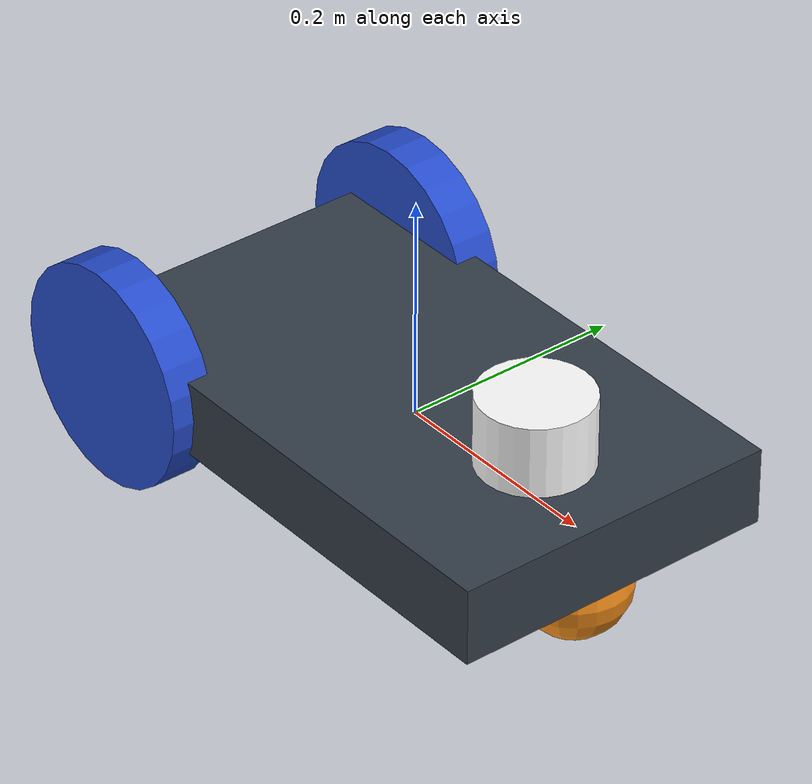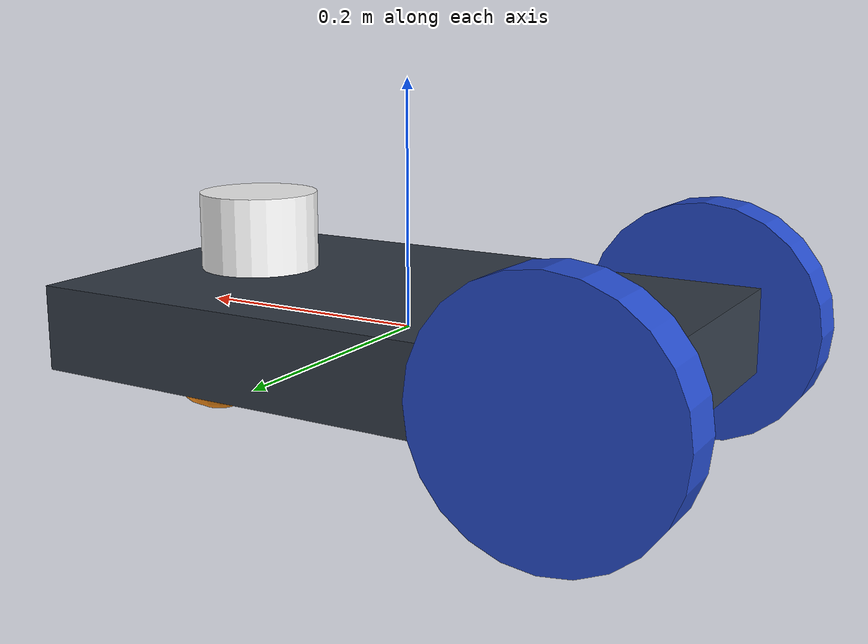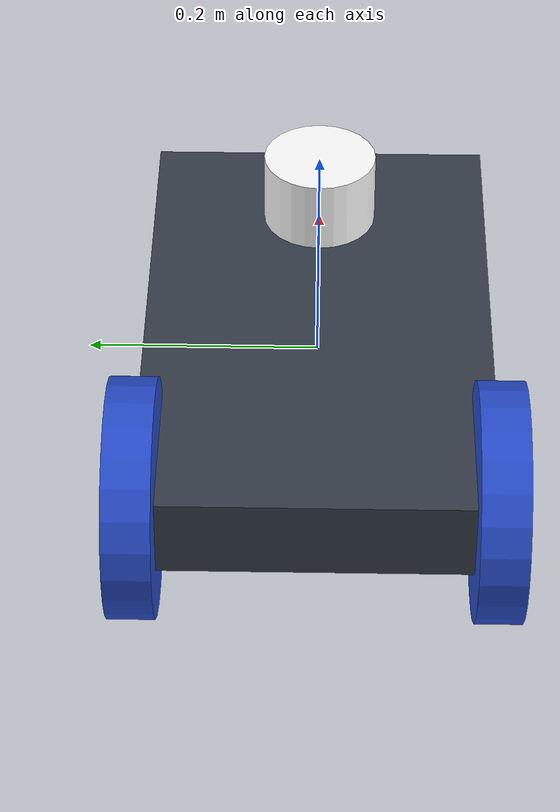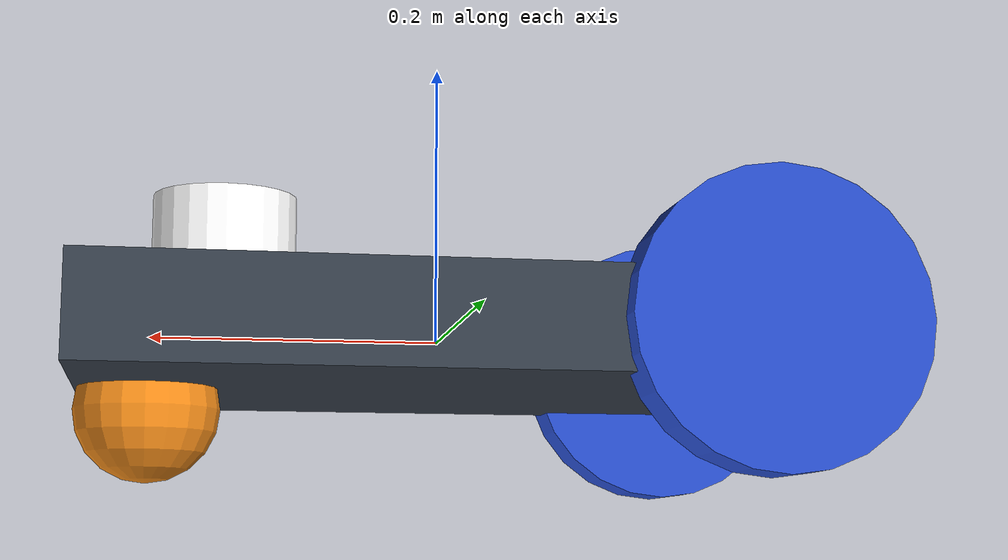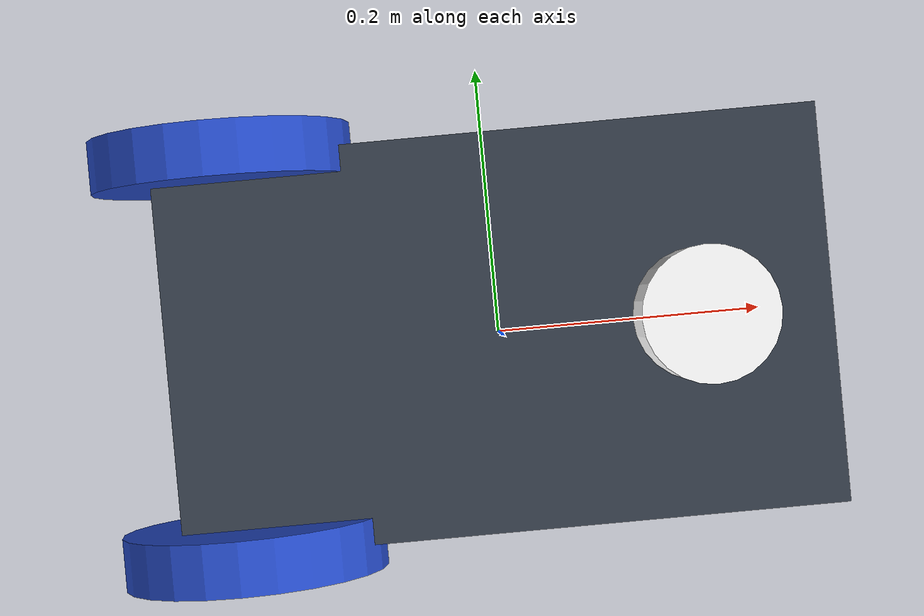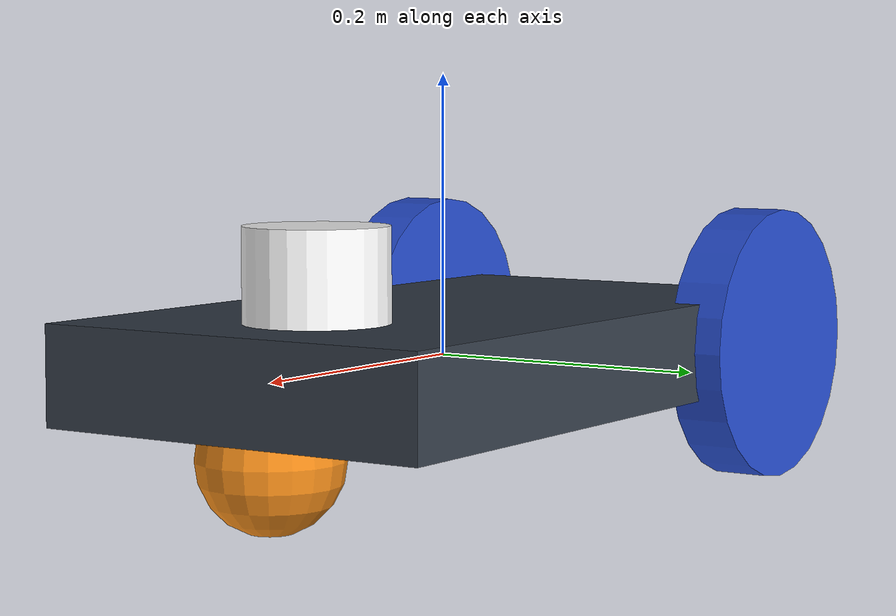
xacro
<?xml version="1.0" ?>

<robot name="m2wr" xmlns:xacro="https://www.ros.org/wiki/xacro" >

  <material name="black">
    <color rgba="0.0 0.0 0.0 1.0"/>
  </material>
  <material name="blue">
    <color rgba="0.203125 0.23828125 0.28515625 1.0"/>
  </material>
  <material name="green">
    <color rgba="0.0 0.8 0.0 1.0"/>
  </material>
  <material name="grey">
    <color rgba="0.2 0.2 0.2 1.0"/>
  </material>
  <material name="orange">
    <color rgba="1.0 0.423529411765 0.0392156862745 1.0"/>
  </material>
  <material name="brown">
    <color rgba="0.870588235294 0.811764705882 0.764705882353 1.0"/>
  </material>
  <material name="red">
    <color rgba="0.80078125 0.12890625 0.1328125 1.0"/>
  </material>
  <material name="white">
    <color rgba="1.0 1.0 1.0 1.0"/>
  </material>

  <gazebo reference="link_chassis">
    <material>Gazebo/Orange</material>
  </gazebo>
  <gazebo reference="link_left_wheel">
    <material>Gazebo/Blue</material>
  </gazebo>
  <gazebo reference="link_right_wheel">
    <material>Gazebo/Blue</material>
  </gazebo>

  <link name="link_chassis">
    <!-- pose and inertial -->
    <pose>0 0 0.1 0 0 0</pose>

    <inertial>
      <mass value="5"/>
      <origin rpy="0 0 0" xyz="0 0 0.1"/>
      <inertia ixx="0.0395416666667" ixy="0" ixz="0" iyy="0.106208333333" iyz="0" izz="0.106208333333"/>
    </inertial>

    <collision name="collision_chassis">
      <geometry>
        <box size="0.5 0.3 0.07"/>
      </geometry>
    </collision>

    <visual>
      <origin rpy="0 0 0" xyz="0 0 0"/>
      <geometry>
        <box size="0.5 0.3 0.07"/>
      </geometry>
      <material name="blue"/>
    </visual>

    <!-- caster front -->

    <collision name="caster_front_collision">
      <origin rpy=" 0 0 0" xyz="0.35 0 -0.05"/>
      <geometry>
        <sphere radius="0.05"/>
      </geometry>
      <surface>
        <friction>
          <ode>
            <mu>0</mu>
            <mu2>0</mu2>
            <slip1>1.0</slip1>
            <slip2>1.0</slip2>
          </ode>
        </friction>
      </surface>
    </collision>
    <visual name="caster_front_visual">
      <origin rpy=" 0 0 0" xyz="0.2 0 -0.05"/>
      <geometry>
        <sphere radius="0.05"/>
      </geometry>
    </visual>
    </link>

  <!-- Create wheel right -->

  <link name="link_right_wheel">
    <inertial>
      <mass value="0.2"/>
      <origin rpy="0 1.5707 1.5707" xyz="0 0 0"/>
      <inertia ixx="0.00052666666" ixy="0" ixz="0" iyy="0.00052666666" iyz="0" izz="0.001"/>
    </inertial>

    <collision name="link_right_wheel_collision">
      <origin rpy="0 1.5707 1.5707" xyz="0 0 0" />
      <geometry>
        <cylinder length="0.04" radius="0.1"/>
      </geometry>
    </collision>

    <visual name="link_right_wheel_visual">
      <origin rpy="0 1.5707 1.5707" xyz="0 0 0"/>
      <geometry>
        <cylinder length="0.04" radius="0.1"/>
      </geometry>
    </visual>

  </link>

  <!--   Joint for right wheel  -->
  <joint name="joint_right_wheel" type="continuous">
    <origin rpy="0 0 0" xyz="-0.2 0.15 0"/>
    <child link="link_right_wheel" />
    <parent link="link_chassis"/>
    <axis rpy="0 0 0" xyz="0 1 0"/>
    <limit effort="10000" velocity="1000"/>
    <joint_properties damping="1.0" friction="1.0" />
  </joint>

  <!-- Left Wheel link -->

  <link name="link_left_wheel">
    <inertial>
      <mass value="0.2"/>
      <origin rpy="0 1.5707 1.5707" xyz="0 0 0"/>
      <inertia ixx="0.00052666666" ixy="0" ixz="0" iyy="0.00052666666" iyz="0" izz="0.001"/>
    </inertial>

    <collision name="link_left_wheel_collision">
      <origin rpy="0 1.5707 1.5707" xyz="0 0 0" />
      <geometry>
        <cylinder length="0.04" radius="0.1"/>
      </geometry>
    </collision>

    <visual name="link_left_wheel_visual">
      <origin rpy="0 1.5707 1.5707" xyz="0 0 0"/>
      <geometry>
        <cylinder length="0.04" radius="0.1"/>
      </geometry>
    </visual>

  </link>

  <!--   Joint for right wheel  -->
  <joint name="joint_left_wheel" type="continuous">
    <origin rpy="0 0 0" xyz="-0.2 -0.15 0"/>
    <child link="link_left_wheel" />
    <parent link="link_chassis"/>
    <axis rpy="0 0 0" xyz="0 1 0"/>
    <limit effort="10000" velocity="1000"/>
    <joint_properties damping="1.0" friction="1.0" />
  </joint>
   <link name="sensor_laser">
    <inertial>
      <origin xyz="0 0 0" rpy="0 0 0" />
      <mass value="1" />
      <!-- RANDOM INERTIA BELOW -->
      <inertia ixx="0.02" ixy="0" ixz="0" iyy="0.02" iyz="0" izz="0.02"/>
    </inertial>

    <visual>
      <origin xyz="0 0 0" rpy="0 0 0" />
      <geometry>
        <cylinder radius="0.05" length="0.1"/>
      </geometry>
      <material name="white" />
    </visual>

    <collision>
      <origin xyz="0 0 0" rpy="0 0 0"/>
      <geometry>
        <cylinder radius="0.05" length="0.1"/>
      </geometry>
    </collision>
  </link>

  <joint name="joint_sensor_laser" type="fixed">
    <origin xyz="0.15 0 0.05" rpy="0 0 0"/>
    <parent link="link_chassis"/>
    <child link="sensor_laser"/>
  </joint>

  <xacro:macro name="cylinder_inertia" params="mass r l">
    <inertia ixx="${mass*(3*r*r+l*l)/12}" ixy = "0" ixz = "0"
                iyy="${mass*(3*r*r+l*l)/12}" iyz = "0" izz="${mass*(r*r)/2}" />
  </xacro:macro>
  <xacro:cylinder_inertia mass="1" r="0.05" l="0.1" />

 <gazebo reference="sensor_laser">
    <sensor type="ray" name="head_hokuyo_sensor">
      <pose>0 0 0 0 0 0</pose>
      <visualize>false</visualize>
      <update_rate>20</update_rate>
      <ray>
        <scan>
          <horizontal>
            <samples>720</samples>
            <resolution>1</resolution>
            <min_angle>-1.570796</min_angle>
            <max_angle>1.570796</max_angle>
          </horizontal>
        </scan>
        <range>
          <min>0.10</min>
          <max>10.0</max>
          <resolution>0.01</resolution>
        </range>
        <noise>
          <type>gaussian</type>
          <mean>0.0</mean>
          <stddev>0.01</stddev>
        </noise>
      </ray>
      <plugin name="gazebo_ros_head_hokuyo_controller" filename="libgazebo_ros_laser.so">
        <topicName>/scan</topicName>
        <frameName>sensor_laser</frameName>
      </plugin>
    </sensor>
  </gazebo>

 <gazebo>
    <plugin filename="libgazebo_ros_diff_drive.so" name="differential_drive_controller">
      <alwaysOn>true</alwaysOn>
      <updateRate>20</updateRate>
      <leftJoint>joint_left_wheel</leftJoint>
      <rightJoint>joint_right_wheel</rightJoint>
      <wheelSeparation>0.4</wheelSeparation>
      <wheelDiameter>0.1</wheelDiameter>
      <torque>0.005</torque>
      <commandTopic>cmd_vel</commandTopic>
      <odometryTopic>odom</odometryTopic>
      <odometryFrame>odom</odometryFrame>
      <robotBaseFrame>link_chassis</robotBaseFrame>
    </plugin>
  </gazebo>
</robot>
